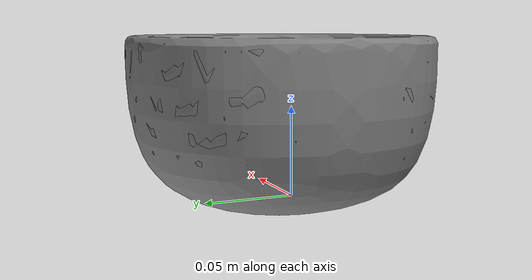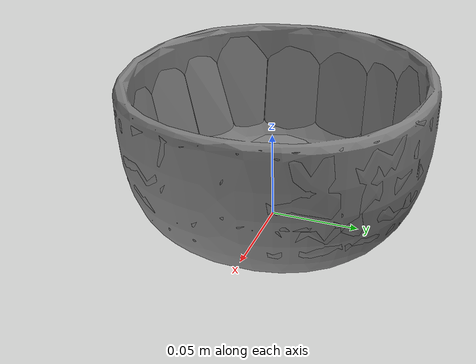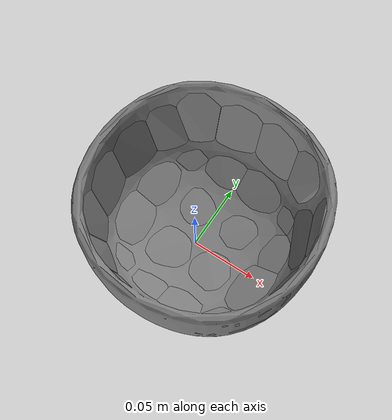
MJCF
<mujoco model="bowl2">
  <asset>
    <mesh file="../../meshes/train/bowl2/simple_mesh.stl" name="bowl2_mesh" scale="1 1 1"/>
    <mesh file="../../meshes/train/bowl2/bowl2_hull_1.stl" name="bowl2_hull_mesh_1" scale="1 1 1"/>
    <mesh file="../../meshes/train/bowl2/bowl2_hull_2.stl" name="bowl2_hull_mesh_2" scale="1 1 1"/>
    <mesh file="../../meshes/train/bowl2/bowl2_hull_3.stl" name="bowl2_hull_mesh_3" scale="1 1 1"/>
    <mesh file="../../meshes/train/bowl2/bowl2_hull_4.stl" name="bowl2_hull_mesh_4" scale="1 1 1"/>
    <mesh file="../../meshes/train/bowl2/bowl2_hull_5.stl" name="bowl2_hull_mesh_5" scale="1 1 1"/>
    <mesh file="../../meshes/train/bowl2/bowl2_hull_6.stl" name="bowl2_hull_mesh_6" scale="1 1 1"/>
    <mesh file="../../meshes/train/bowl2/bowl2_hull_7.stl" name="bowl2_hull_mesh_7" scale="1 1 1"/>
    <mesh file="../../meshes/train/bowl2/bowl2_hull_8.stl" name="bowl2_hull_mesh_8" scale="1 1 1"/>
    <mesh file="../../meshes/train/bowl2/bowl2_hull_9.stl" name="bowl2_hull_mesh_9" scale="1 1 1"/>
    <mesh file="../../meshes/train/bowl2/bowl2_hull_10.stl" name="bowl2_hull_mesh_10" scale="1 1 1"/>
    <mesh file="../../meshes/train/bowl2/bowl2_hull_11.stl" name="bowl2_hull_mesh_11" scale="1 1 1"/>
    <mesh file="../../meshes/train/bowl2/bowl2_hull_12.stl" name="bowl2_hull_mesh_12" scale="1 1 1"/>
    <mesh file="../../meshes/train/bowl2/bowl2_hull_13.stl" name="bowl2_hull_mesh_13" scale="1 1 1"/>
    <mesh file="../../meshes/train/bowl2/bowl2_hull_14.stl" name="bowl2_hull_mesh_14" scale="1 1 1"/>
    <mesh file="../../meshes/train/bowl2/bowl2_hull_15.stl" name="bowl2_hull_mesh_15" scale="1 1 1"/>
    <mesh file="../../meshes/train/bowl2/bowl2_hull_16.stl" name="bowl2_hull_mesh_16" scale="1 1 1"/>
    <mesh file="../../meshes/train/bowl2/bowl2_hull_17.stl" name="bowl2_hull_mesh_17" scale="1 1 1"/>
    <mesh file="../../meshes/train/bowl2/bowl2_hull_18.stl" name="bowl2_hull_mesh_18" scale="1 1 1"/>
    <mesh file="../../meshes/train/bowl2/bowl2_hull_19.stl" name="bowl2_hull_mesh_19" scale="1 1 1"/>
    <mesh file="../../meshes/train/bowl2/bowl2_hull_20.stl" name="bowl2_hull_mesh_20" scale="1 1 1"/>
    <mesh file="../../meshes/train/bowl2/bowl2_hull_21.stl" name="bowl2_hull_mesh_21" scale="1 1 1"/>
    <mesh file="../../meshes/train/bowl2/bowl2_hull_22.stl" name="bowl2_hull_mesh_22" scale="1 1 1"/>
    <mesh file="../../meshes/train/bowl2/bowl2_hull_23.stl" name="bowl2_hull_mesh_23" scale="1 1 1"/>
    <mesh file="../../meshes/train/bowl2/bowl2_hull_24.stl" name="bowl2_hull_mesh_24" scale="1 1 1"/>
    <mesh file="../../meshes/train/bowl2/bowl2_hull_25.stl" name="bowl2_hull_mesh_25" scale="1 1 1"/>
    <mesh file="../../meshes/train/bowl2/bowl2_hull_26.stl" name="bowl2_hull_mesh_26" scale="1 1 1"/>
    <mesh file="../../meshes/train/bowl2/bowl2_hull_27.stl" name="bowl2_hull_mesh_27" scale="1 1 1"/>
    <mesh file="../../meshes/train/bowl2/bowl2_hull_28.stl" name="bowl2_hull_mesh_28" scale="1 1 1"/>
    <mesh file="../../meshes/train/bowl2/bowl2_hull_29.stl" name="bowl2_hull_mesh_29" scale="1 1 1"/>
    <mesh file="../../meshes/train/bowl2/bowl2_hull_30.stl" name="bowl2_hull_mesh_30" scale="1 1 1"/>
    <mesh file="../../meshes/train/bowl2/bowl2_hull_31.stl" name="bowl2_hull_mesh_31" scale="1 1 1"/>
    <mesh file="../../meshes/train/bowl2/bowl2_hull_32.stl" name="bowl2_hull_mesh_32" scale="1 1 1"/>
  </asset>
  <worldbody>
    <body>
      <body name="object">
        <geom pos="0 0 0" mesh="bowl2_mesh" type="mesh" contype="0" conaffinity="0" group="1"/>
        <geom pos="0 0 0" mesh="bowl2_hull_mesh_1" type="mesh" margin="0.001" solimp="0.998 0.998 0.001" solref="0.001 1" density="2000" friction="0.95 0.3 0.1" group="0" condim="4"/>
        <geom pos="0 0 0" mesh="bowl2_hull_mesh_2" type="mesh" margin="0.001" solimp="0.998 0.998 0.001" solref="0.001 1" density="2000" friction="0.95 0.3 0.1" group="0" condim="4"/>
        <geom pos="0 0 0" mesh="bowl2_hull_mesh_3" type="mesh" margin="0.001" solimp="0.998 0.998 0.001" solref="0.001 1" density="2000" friction="0.95 0.3 0.1" group="0" condim="4"/>
        <geom pos="0 0 0" mesh="bowl2_hull_mesh_4" type="mesh" margin="0.001" solimp="0.998 0.998 0.001" solref="0.001 1" density="2000" friction="0.95 0.3 0.1" group="0" condim="4"/>
        <geom pos="0 0 0" mesh="bowl2_hull_mesh_5" type="mesh" margin="0.001" solimp="0.998 0.998 0.001" solref="0.001 1" density="2000" friction="0.95 0.3 0.1" group="0" condim="4"/>
        <geom pos="0 0 0" mesh="bowl2_hull_mesh_6" type="mesh" margin="0.001" solimp="0.998 0.998 0.001" solref="0.001 1" density="2000" friction="0.95 0.3 0.1" group="0" condim="4"/>
        <geom pos="0 0 0" mesh="bowl2_hull_mesh_7" type="mesh" margin="0.001" solimp="0.998 0.998 0.001" solref="0.001 1" density="2000" friction="0.95 0.3 0.1" group="0" condim="4"/>
        <geom pos="0 0 0" mesh="bowl2_hull_mesh_8" type="mesh" margin="0.001" solimp="0.998 0.998 0.001" solref="0.001 1" density="2000" friction="0.95 0.3 0.1" group="0" condim="4"/>
        <geom pos="0 0 0" mesh="bowl2_hull_mesh_9" type="mesh" margin="0.001" solimp="0.998 0.998 0.001" solref="0.001 1" density="2000" friction="0.95 0.3 0.1" group="0" condim="4"/>
        <geom pos="0 0 0" mesh="bowl2_hull_mesh_10" type="mesh" margin="0.001" solimp="0.998 0.998 0.001" solref="0.001 1" density="2000" friction="0.95 0.3 0.1" group="0" condim="4"/>
        <geom pos="0 0 0" mesh="bowl2_hull_mesh_11" type="mesh" margin="0.001" solimp="0.998 0.998 0.001" solref="0.001 1" density="2000" friction="0.95 0.3 0.1" group="0" condim="4"/>
        <geom pos="0 0 0" mesh="bowl2_hull_mesh_12" type="mesh" margin="0.001" solimp="0.998 0.998 0.001" solref="0.001 1" density="2000" friction="0.95 0.3 0.1" group="0" condim="4"/>
        <geom pos="0 0 0" mesh="bowl2_hull_mesh_13" type="mesh" margin="0.001" solimp="0.998 0.998 0.001" solref="0.001 1" density="2000" friction="0.95 0.3 0.1" group="0" condim="4"/>
        <geom pos="0 0 0" mesh="bowl2_hull_mesh_14" type="mesh" margin="0.001" solimp="0.998 0.998 0.001" solref="0.001 1" density="2000" friction="0.95 0.3 0.1" group="0" condim="4"/>
        <geom pos="0 0 0" mesh="bowl2_hull_mesh_15" type="mesh" margin="0.001" solimp="0.998 0.998 0.001" solref="0.001 1" density="2000" friction="0.95 0.3 0.1" group="0" condim="4"/>
        <geom pos="0 0 0" mesh="bowl2_hull_mesh_16" type="mesh" margin="0.001" solimp="0.998 0.998 0.001" solref="0.001 1" density="2000" friction="0.95 0.3 0.1" group="0" condim="4"/>
        <geom pos="0 0 0" mesh="bowl2_hull_mesh_17" type="mesh" margin="0.001" solimp="0.998 0.998 0.001" solref="0.001 1" density="2000" friction="0.95 0.3 0.1" group="0" condim="4"/>
        <geom pos="0 0 0" mesh="bowl2_hull_mesh_18" type="mesh" margin="0.001" solimp="0.998 0.998 0.001" solref="0.001 1" density="2000" friction="0.95 0.3 0.1" group="0" condim="4"/>
        <geom pos="0 0 0" mesh="bowl2_hull_mesh_19" type="mesh" margin="0.001" solimp="0.998 0.998 0.001" solref="0.001 1" density="2000" friction="0.95 0.3 0.1" group="0" condim="4"/>
        <geom pos="0 0 0" mesh="bowl2_hull_mesh_20" type="mesh" margin="0.001" solimp="0.998 0.998 0.001" solref="0.001 1" density="2000" friction="0.95 0.3 0.1" group="0" condim="4"/>
        <geom pos="0 0 0" mesh="bowl2_hull_mesh_21" type="mesh" margin="0.001" solimp="0.998 0.998 0.001" solref="0.001 1" density="2000" friction="0.95 0.3 0.1" group="0" condim="4"/>
        <geom pos="0 0 0" mesh="bowl2_hull_mesh_22" type="mesh" margin="0.001" solimp="0.998 0.998 0.001" solref="0.001 1" density="2000" friction="0.95 0.3 0.1" group="0" condim="4"/>
        <geom pos="0 0 0" mesh="bowl2_hull_mesh_23" type="mesh" margin="0.001" solimp="0.998 0.998 0.001" solref="0.001 1" density="2000" friction="0.95 0.3 0.1" group="0" condim="4"/>
        <geom pos="0 0 0" mesh="bowl2_hull_mesh_24" type="mesh" margin="0.001" solimp="0.998 0.998 0.001" solref="0.001 1" density="2000" friction="0.95 0.3 0.1" group="0" condim="4"/>
        <geom pos="0 0 0" mesh="bowl2_hull_mesh_25" type="mesh" margin="0.001" solimp="0.998 0.998 0.001" solref="0.001 1" density="2000" friction="0.95 0.3 0.1" group="0" condim="4"/>
        <geom pos="0 0 0" mesh="bowl2_hull_mesh_26" type="mesh" margin="0.001" solimp="0.998 0.998 0.001" solref="0.001 1" density="2000" friction="0.95 0.3 0.1" group="0" condim="4"/>
        <geom pos="0 0 0" mesh="bowl2_hull_mesh_27" type="mesh" margin="0.001" solimp="0.998 0.998 0.001" solref="0.001 1" density="2000" friction="0.95 0.3 0.1" group="0" condim="4"/>
        <geom pos="0 0 0" mesh="bowl2_hull_mesh_28" type="mesh" margin="0.001" solimp="0.998 0.998 0.001" solref="0.001 1" density="2000" friction="0.95 0.3 0.1" group="0" condim="4"/>
        <geom pos="0 0 0" mesh="bowl2_hull_mesh_29" type="mesh" margin="0.001" solimp="0.998 0.998 0.001" solref="0.001 1" density="2000" friction="0.95 0.3 0.1" group="0" condim="4"/>
        <geom pos="0 0 0" mesh="bowl2_hull_mesh_30" type="mesh" margin="0.001" solimp="0.998 0.998 0.001" solref="0.001 1" density="2000" friction="0.95 0.3 0.1" group="0" condim="4"/>
        <geom pos="0 0 0" mesh="bowl2_hull_mesh_31" type="mesh" margin="0.001" solimp="0.998 0.998 0.001" solref="0.001 1" density="2000" friction="0.95 0.3 0.1" group="0" condim="4"/>
        <geom pos="0 0 0" mesh="bowl2_hull_mesh_32" type="mesh" margin="0.001" solimp="0.998 0.998 0.001" solref="0.001 1" density="2000" friction="0.95 0.3 0.1" group="0" condim="4"/>
      </body>
      <site rgba="0 0 0 0" size="0.005" pos="0 0 -0.001" name="bottom_site"/>
      <site rgba="0 0 0 0" size="0.005" pos="0 0 0.02" name="top_site"/>
      <site rgba="0 0 0 0" size="0.005" pos="0.0375 0.02 0" name="horizontal_radius_site"/>
    </body>
  </worldbody>
</mujoco>
